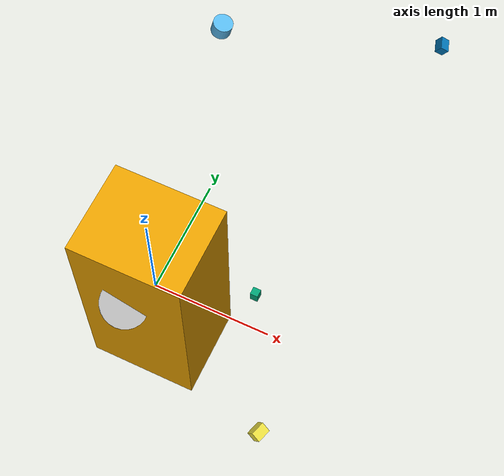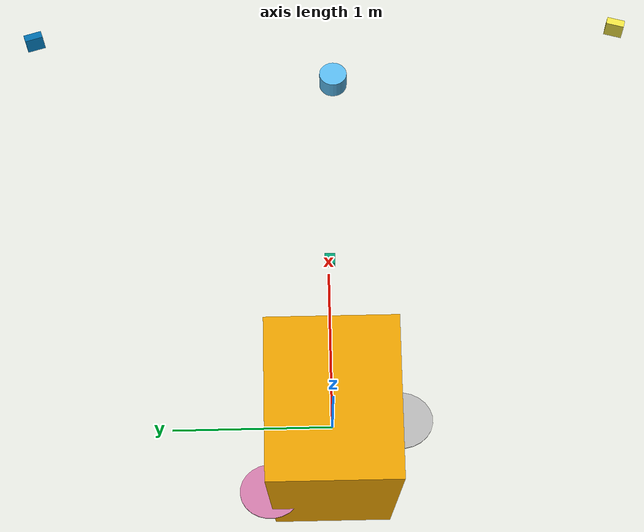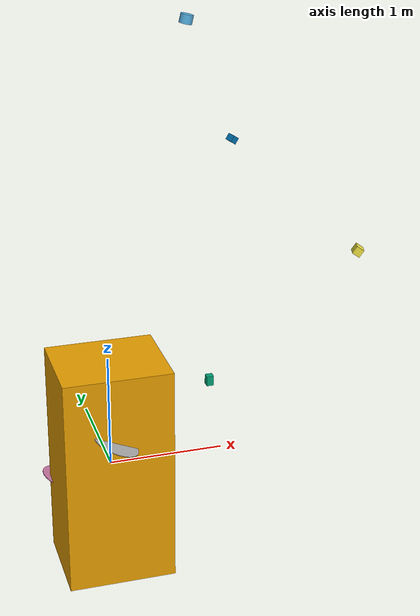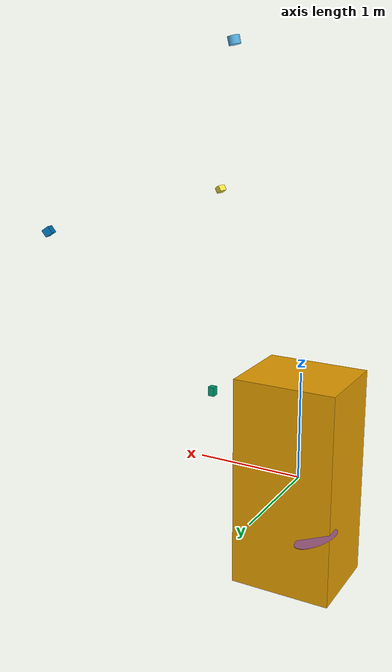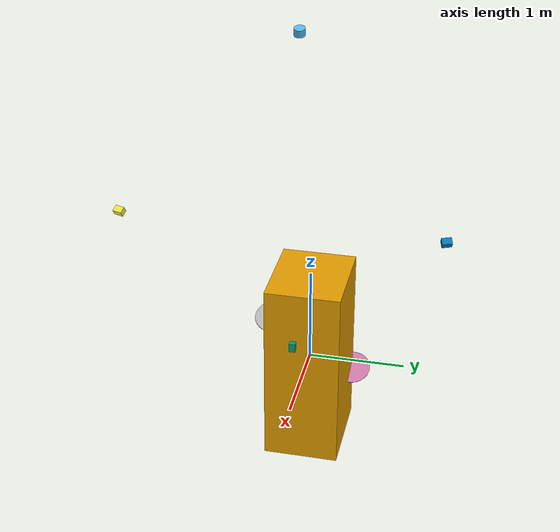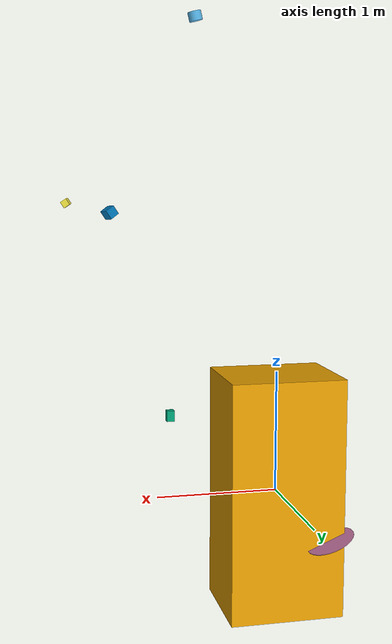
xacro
<?xml version="1.0"?>
<robot xmlns:xacro="http://www.ros.org/wiki/xacro" name="my_robot">
	<link name="base(parent)">
	    <visual>
		<origin xyz="0 0 0" rpy="0 0 0"/>
		<geometry>
		  <box size="0.94 0.78 1.98" />
 	      	</geometry>
  	    </visual>
        </link>

	<link name="laser_horiz">
	    <visual>
	 	<origin xyz="0.2325 0.00001 1.9201" rpy="-0.0012 0.1146 -0.0015"/>
		<geometry>
		  <cylinder radius="0.052" length="0.072"/>
 	      	</geometry>
  	    </visual>

            <collision>
             <origin xyz="0.2325 0.00001 1.9201" rpy="-0.0012 0.1146 -0.0015"/>
		<geometry>
		  <cylinder radius="0.052" length="0.072"/>
 	      	</geometry>
            </collision>
        </link>

	<link name="laser_vert_bottom">
	    <visual>
	 	<origin xyz="0.3158 -0.0021 0.5100" rpy="3.1355 -1.3045 0.0025" />
		<geometry>
		  <box size="0.062 0.062 0.087" />
 	      	</geometry>
  	    </visual>

            <collision>
             <origin xyz="0.3158 -0.0021 0.5100" rpy="3.1355 -1.3045 0.0025" />
             <geometry>
		  <box size="0.062 0.062 0.087" />
 	     </geometry>
            </collision>
        </link>

	<link name="laser_vert_top_right">
	    <visual>
	 	<origin xyz="0.2978 -0.1450 1.8451" rpy="-1.1760 0.6313 -1.9377" />
		<geometry>
		  <box size="0.062 0.062 0.087" />
 	      	</geometry>
  	    </visual>

            <collision>
             <origin xyz="0.2978 -0.1450 1.8451" rpy="-1.1760 0.6313 -1.9377" />
             <geometry>
		  <box size="0.062 0.062 0.087" />
 	     </geometry>
            </collision>
        </link>

	<link name="laser_vert_top_left">
	    <visual>
	 	<origin xyz="0.2997 0.1531 1.8443" rpy="1.1780 0.6198 1.9560" />
		<geometry>
		  <box size="0.062 0.062 0.087" />
 	      	</geometry>
  	    </visual>

            <collision>
             <origin xyz="0.2997 0.1531 1.8443" rpy="1.1780 0.6198 1.9560" />
             <geometry>
		  <box size="0.062 0.062 0.087" />
 	     </geometry>
            </collision>
        </link>
	<link name="wheel_center">
	    		<visual>
	 			<origin xyz="-0.1 0.0 0.0" rpy="-1.57079632679 0.4 0.0" />
				<geometry>
				  <cylinder radius="0.2" length="0.005"/>
 	      			</geometry>
  	 		</visual>

            		<collision>
           		  <origin xyz="-0.1 0.0 0.0" rpy="-1.57079632679 0.4 0.0" />
           		  <geometry>
				<cylinder radius="0.2" length="0.005"/>
 	  		  </geometry>
          		</collision>
      		</link>
		<joint name="base_wheel_center_joint" type="fixed">
			<origin xyz="-0.1 0.0 0.0" rpy="-1.57079632679 0.4 0.0" />
			<parent link="base(parent)"/>
			<child link="wheel_center"/>
		</joint>

	<joint name="base_laser_vert_bottom_joint" type="fixed">
		<origin xyz="0.3158 -0.0021 0.5100" rpy="3.1355 -1.3045 0.0025" />
		<parent link="base(parent)"/>
		<child link="laser_vert_bottom"/>
	</joint>
	<joint name="base_laser_vert_top_right_joint" type="fixed">
		<origin xyz="0.2978 -0.1450 1.8451" rpy="-1.1760 0.6313 -1.9377" />
		<parent link="base(parent)"/>
		<child link="laser_vert_top_right"/>
	</joint>
	<joint name="base_laser_vert_top_left_joint" type="fixed">
		<origin xyz="0.2997 0.1531 1.8443" rpy="1.1780 0.6198 1.9560" />
		<parent link="base(parent)"/>
		<child link="laser_vert_top_left"/>
	</joint>
	<joint name="base_laser_horiz_joint" type="fixed">
		<origin xyz="0.2325 0.00001 1.9201" rpy="-0.0012 0.1146 -0.0015"/>
		<parent link="base(parent)"/>
		<child link="laser_horiz"/>
	</joint>
	<xacro:macro name="xacro_name" params="suffix reflect">
		<link name="wheel_${suffix}">
	    		<visual>
	 			<origin xyz="-0.1 ${reflect*0.4} 0.0" rpy="-1.57079632679 0.4 0.0" />
				<geometry>
				  <cylinder radius="0.2" length="0.005"/>
 	      			</geometry>
  	 		</visual>

            		<collision>
           		  <origin xyz="-0.1 ${reflect*0.4} 0.0" rpy="-1.57079632679 0.4 0.0" />
           		  <geometry>
				<cylinder radius="0.2" length="0.005"/>
 	  		  </geometry>
          		</collision>
      		</link>
		<joint name="base_wheel_${suffix}_joint" type="fixed">
			<origin xyz="-0.1 ${reflect*0.4} 0.0" rpy="-1.57079632679 0.4 0.0" />
			<parent link="base(parent)"/>
			<child link="wheel_${suffix}"/>
		</joint>
	</xacro:macro>
	<xacro:xacro_name suffix="left" reflect="1" />
	<xacro:xacro_name suffix="right" reflect="-1" />
</robot>
